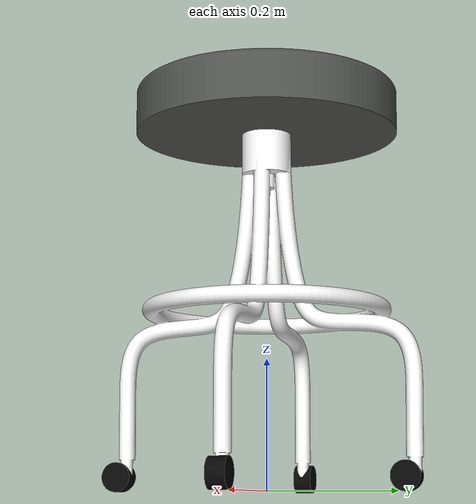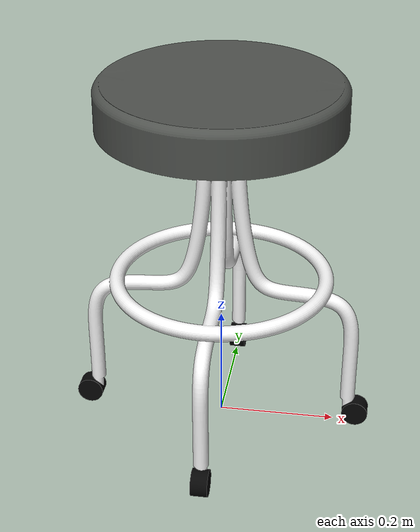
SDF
<?xml version='1.0'?>
<sdf version='1.6'>
  <model name='stool'>
    <static>1</static>
    <link name='link'>
      <pose>0 0 0 0 -0 0</pose>
      <visual name='visual'>
        <pose>0 0 0 0 -0 0</pose>
        <geometry>
          <mesh>
            <uri>stool.dae</uri>
            <scale>1 1 1</scale>
          </mesh>
        </geometry>
      </visual>
      <collision name='collision'>
        <geometry>
          <mesh>
            <uri>stool.dae</uri>
            <scale>1 1 1</scale>
          </mesh>
        </geometry>
      </collision>
    </link>
  </model>
</sdf>
